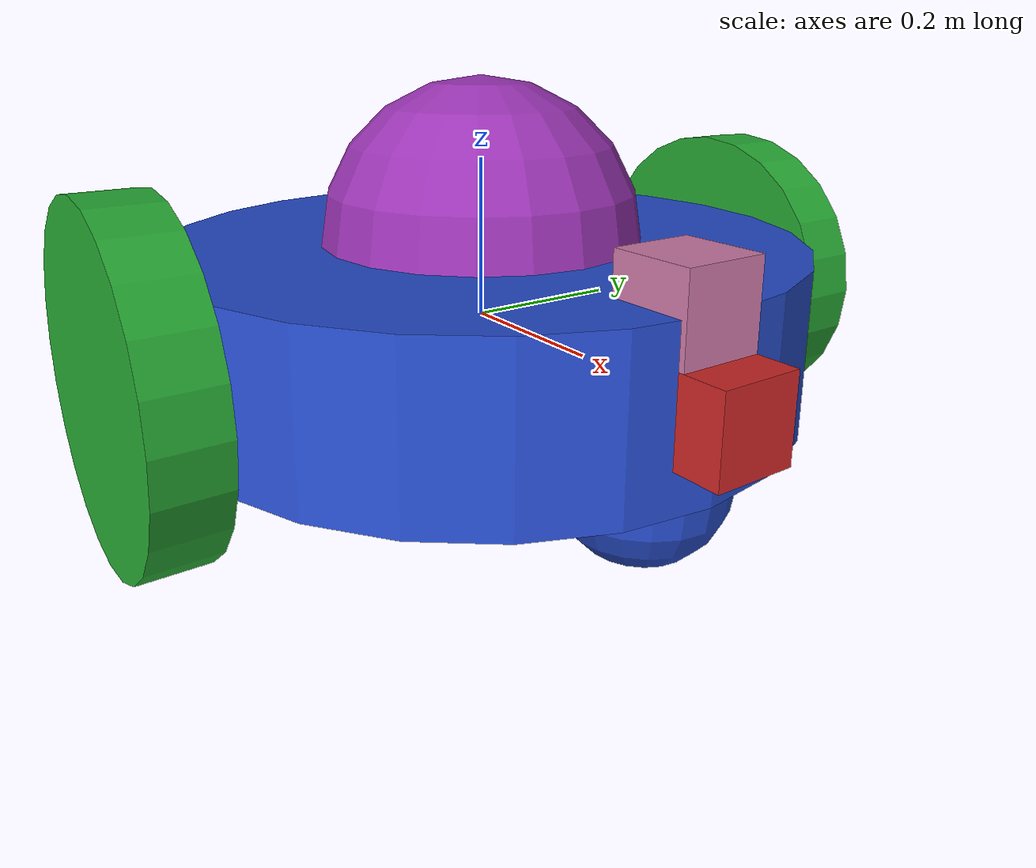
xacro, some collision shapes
<?xml version='1.0'?>

<robot name="my_robot"
  xmlns:xacro="http://www.ros.org/wiki/xacro">

  <!-- Properties -->
  <xacro:property name="PI" value="3.1415926535897931"/>

  <xacro:property name="chassisHeight" value="0.2"/>
  <xacro:property name="chassisRadius" value="0.4"/>
  <xacro:property name="chassisMass" value="15"/>

  <xacro:property name="wheelWidth" value="0.08"/>
  <xacro:property name="wheelRadius" value="0.2"/>
  <xacro:property name="wheelPos" value="${chassisRadius + wheelWidth/2}"/>
  <xacro:property name="wheelMass" value="5"/>

  <xacro:property name="casterRadius" value="${wheelRadius / 2.0}"/>
  <xacro:property name="casterMass" value="5"/>

  <xacro:property name="cameraSize" value="0.1"/>
  <xacro:property name="cameraMass" value="0.1"/>

  <xacro:property name="headRadius" value="${chassisHeight}" />
  <xacro:property name="headMass" value="${chassisMass / 3.0}" />

  <!-- Includes -->
  <xacro:include filename="$(find my_robot)/urdf/macros.xacro"/>
  <xacro:include filename="$(find my_robot)/urdf/materials.gazebo"/>
  <xacro:include filename="$(find my_robot)/urdf/my_robot.gazebo" />

  <link name="robot_footprint"></link>

  <joint name="robot_footprint_joint" type="fixed">
    <origin xyz="0 0 0" rpy="0 0 0" />
    <parent link="robot_footprint"/>
    <child link="chassis" />
  </joint>

  <link name='chassis'>
    <pose>0 0 0 0 0 0</pose>

    <inertial>
      <mass value="${chassisMass}"/>
      <xacro:cylinder_inertia m="${chassisMass}" r="${chassisRadius}" h="${chassisHeight}" />
    </inertial>

    <collision name='collision'>
      <geometry>
        <cylinder length="${chassisHeight}" radius="${chassisRadius}"/>
      </geometry>
    </collision>

    <visual name='chassis_visual'>
      <geometry>
        <cylinder length="${chassisHeight}" radius="${chassisRadius}"/>
      </geometry>
    </visual>

    <!-- caster wheels -->
    <!-- back -->
    <collision name='back_caster_collision'>
      <origin xyz="${casterRadius-chassisRadius} 0 ${-casterRadius}" rpy=" 0 0 0"/>
      <geometry>
        <sphere radius="${casterRadius - 0.0001}"/>
      </geometry>
    </collision>

    <visual name='back_caster_visual'>
      <origin xyz="${casterRadius-chassisRadius} 0 ${-casterRadius}" rpy=" 0 0 0"/>
      <geometry>
        <sphere radius="${casterRadius - 0.0001}"/>
      </geometry>
    </visual>

    <!-- front -->
    <collision name='front_caster_collision'>
      <origin xyz="${chassisRadius - casterRadius} 0 ${-casterRadius}" rpy=" 0 0 0"/>
      <geometry>
        <sphere radius="${casterRadius - 0.0001}"/>
      </geometry>
    </collision>

    <visual name='front_caster_visual'>
      <origin xyz="${chassisRadius - casterRadius} 0 ${-casterRadius}" rpy=" 0 0 0"/>
      <geometry>
        <sphere radius="${casterRadius - 0.0001}"/>
      </geometry>
    </visual>

  </link>

  <!-- Wheels -->

  <link name="left_wheel">
   <pose>0 ${wheelPos} 0 0 0 0</pose>
    <visual>
      <origin xyz="0 0 0" rpy= "0 1.5707 1.5707"/>
      <geometry>
        <cylinder radius="${wheelRadius}" length="${wheelWidth}" />
      </geometry>
    </visual>

    <collision>
      <origin xyz="0 0 0" rpy= "0 1.5707 1.5707"/>
      <geometry>
        <cylinder radius="${wheelRadius}" length="${wheelWidth}" />
      </geometry>
    </collision>

    <inertial>
      <mass value="${wheelMass}"/>
      <origin xyz="0.0 0 0" rpy=" 0 1.5707 1.5707"/>
      <xacro:cylinder_inertia  m="${wheelMass}" r="${wheelRadius}" h="${wheelWidth}" />
    </inertial>
  </link>

  <link name="right_wheel">
    <pose>0 ${-wheelPos} 0 0 0 0</pose>
    <visual>
      <origin xyz="0 0 0" rpy= "0 1.5707 1.5707"/>
      <geometry>
        <cylinder radius="${wheelRadius}" length="${wheelWidth}" />
      </geometry>
    </visual>

    <collision>
      <origin xyz="0 0 0" rpy= "0 1.5707 1.5707"/>
      <geometry>
        <cylinder radius="${wheelRadius}" length="${wheelWidth}" />
      </geometry>
    </collision>

    <inertial>
      <mass value="5.0"/>
       <origin xyz="0 0 0" rpy= "0 1.5707 1.5707"/>
       <xacro:cylinder_inertia m="${wheelMass}" r="${wheelRadius}" h="${wheelWidth}" />
    </inertial>
  </link>

 <joint type="continuous" name="left_wheel_hinge">
    <origin xyz="0 ${wheelPos} 0" rpy="0 0 0"/>
    <child link="left_wheel"/>
    <parent link="chassis"/>
    <axis xyz="0 1 0" rpy="0 0 0"/>
    <limit effort="10000" velocity="1000"/>
    <dynamics damping="1.0" friction="1.0"/>
  </joint>

 <joint type="continuous" name="right_wheel_hinge">
    <origin xyz="0 ${-wheelPos} 0" rpy="0 0 0"/>
    <child link="right_wheel"/>
    <parent link="chassis"/>
    <axis xyz="0 1 0" rpy="0 0 0"/>
    <limit effort="10000" velocity="1000"/>
    <dynamics damping="1.0" friction="1.0"/>
  </joint>

  <!-- Camera Sensor -->
  <link name="camera">
    <origin xyz="0.0 0.0 0.0" rpy="0.0 0.0 0.0"/>

    <collision name='collision'>
      <origin xyz="0 0 0" rpy="0 0 0"/>
      <geometry>
        <box size="${cameraSize} ${cameraSize} ${cameraSize}"/>
      </geometry>
    </collision>

    <visual name='camera_visual'>
      <origin xyz="0 0 0" rpy="0 0 0"/>
      <geometry>
        <box size="${cameraSize} ${cameraSize} ${cameraSize}"/>
      </geometry>
    </visual>

    <inertial>
      <mass value="${cameraMass}"/>
      <origin xyz="0.0 0.0 0.0" rpy="0.0 0.0 0.0"/>
      <xacro:box_inertia x="${cameraSize}" y="${cameraSize}" z="${cameraSize}" m="${cameraMass}" />
    </inertial>
  </link>

  <joint name="camera_joint" type="fixed">
    <axis xyz="0.0 1.0 0.0"/>
    <origin xyz="${chassisRadius} 0.0 0.0" rpy="0.0 0.0 0.0"/>
    <parent link="chassis"/>
    <child link="camera"/>

  </joint>

  <!-- Optical Camera Sensor-->
  <joint name="camera_optical_joint" type="fixed">
    <origin xyz="0 0 0" rpy="-1.5707 0 -1.5707"/>
    <parent link="camera"/>
    <child link="camera_link_optical"/>
  </joint>

  <link name="camera_link_optical">
  </link>

  <!-- Laser Sensor-->
  <link name="hokuyo">
    <inertial>
      <mass value="1e-5"/>
      <inertia ixx="1e-6" ixy="0.0" ixz="0.0" iyy="1e-6" iyz="0.0" izz="1e-6"/>
    </inertial>
    <visual name="hokuyo_visual">
      <geometry>
        <mesh filename="package://my_robot/meshes/hokuyo.dae"/>
      </geometry>
    </visual>
    <collision name="hokuyo_collision">
      <geometry>
        <box size="0.1 0.1 0.1"/>
      </geometry>
    </collision>
  </link>

  <joint name="hokuyo_joint" type="fixed">
    <origin xyz="${chassisRadius - 0.05} 0 0.1" rpy="0.0 0.0 0.0"/>
    <parent link="chassis"/>
    <child link="hokuyo"/>
    <axis xyz="0.0 1.0 0.0"/>
  </joint>

  <link name="robot_head">
    <pose>0.0 0.0 ${chassisHeight/2} 0.0 0.0 0.0</pose>

    <inertial>
      <mass value="${headMass}"/>
      <xacro:sphere_inertia m="${headMass}" r="${headRadius}"/>
    </inertial>

    <visual>
      <geometry>
        <sphere radius="${headRadius}"/>
      </geometry>
    </visual>

    <collision>
      <geometry>
        <sphere radius="${headRadius}"/>
      </geometry>
    </collision>
  </link>

  <joint name="joint_chassis_head" type="fixed">
    <origin xyz="0.0 0.0 ${chassisHeight/2}" rpy="0.0 0.0 0.0"/>
    <parent link="chassis"/>
    <child link="robot_head"/>
    <axis xyz="0.0 1 0.0"/>
  </joint>
</robot>

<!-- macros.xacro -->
<robot name="xacro:macros" xmlns:xacro="http://www.ros.org/wiki/xacro">
  <xacro:macro name="box_inertia" params="m x y z">
    <inertia  ixx="${m*(y*y+z*z)/12}" ixy = "0" ixz = "0"
      iyy="${m*(x*x+z*z)/12}" iyz = "0"
      izz="${m*(x*x+z*z)/12}"
    />
  </xacro:macro>

  <xacro:macro name="cylinder_inertia" params="m r h">
    <inertia  ixx="${m*(3*r*r+h*h)/12}" ixy = "0" ixz = "0"
      iyy="${m*(3*r*r+h*h)/12}" iyz = "0"
      izz="${m*r*r/2}"
    />
  </xacro:macro>

  <xacro:macro name="sphere_inertia" params="m r">
    <inertia  ixx="${2*m*r*r/5}" ixy = "0" ixz = "0"
      iyy="${2*m*r*r/5}" iyz = "0"
      izz="${2*m*r*r/5}"
    />
  </xacro:macro>

</robot>
